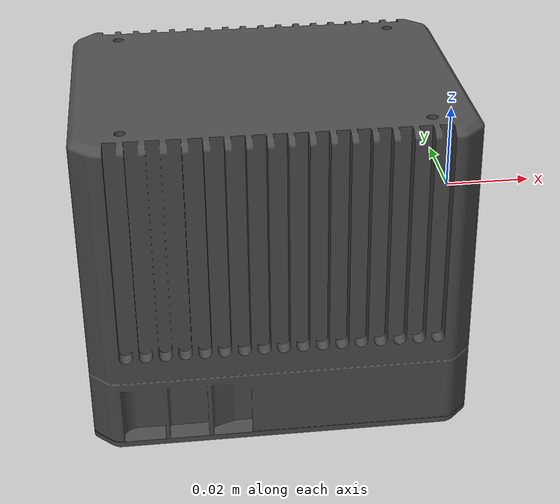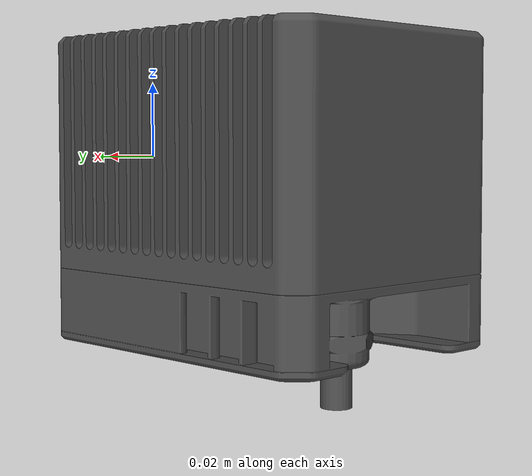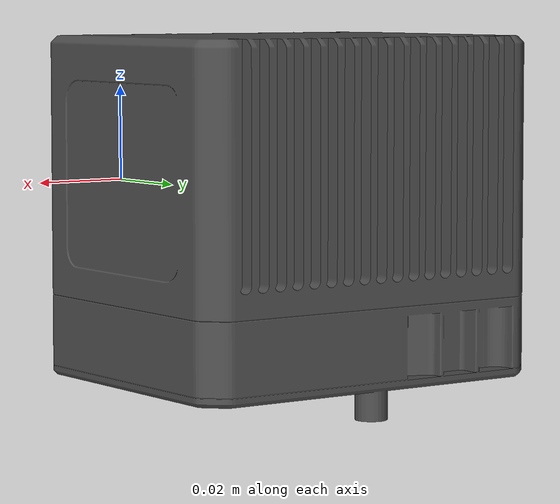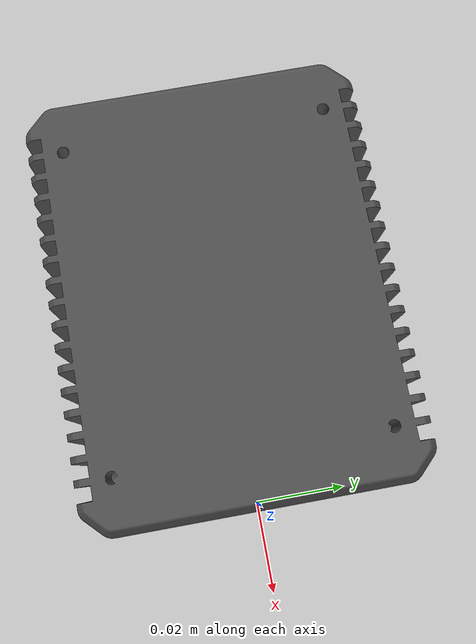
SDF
<sdf version='1.6'>
  <model name='livox_avia'>
    <link name='livox_base'>
      <pose frame=''>0 0 0 0 -0 0</pose>
      <inertial>
        <pose frame=''>0 0 0 0 -0 0</pose>
        <mass>0.2</mass>
        <inertia>
          <ixx>0.02</ixx>
          <ixy>0</ixy>
          <ixz>0</ixz>
          <iyy>0.02</iyy>
          <iyz>0</iyz>
          <izz>0.02</izz>
        </inertia>
      </inertial>
      <collision name='livox_base_collision'>
        <pose frame=''>0 0 0 0 -0 0</pose>
        <geometry>
          <mesh>
            <scale>0.5 0.5 0.5</scale>
            <uri>model://livox_avia/meshes/livox_mid40.dae</uri>
          </mesh>
        </geometry>
      </collision>
      <visual name='livox_base_visual'>
        <pose frame=''>0 0 0 0 -0 0</pose>
        <geometry>
          <mesh>
            <scale>1 1 1</scale>
            <uri>model://livox_avia/meshes/livox_mid40.dae</uri>
          </mesh>
        </geometry>
        <material>
          <script>
            <name>Gazebo/DarkGrey</name>
            <uri>file://media/materials/scripts/gazebo.material</uri>
          </script>
        </material>
      </visual>
      <gravity>1</gravity>
      <velocity_decay/>
      <sensor name='laser_livox' type='ray'>
        <visualize>1</visualize>
        <update_rate>10</update_rate>
        <plugin name='gazebo_ros_laser_controller' filename='liblivox_laser_simulation.so'>
          <ray>
            <scan>
              <horizontal>
                <samples>100</samples>
                <resolution>1</resolution>
                <min_angle>-0.614355377778</min_angle>
                <max_angle>0.614355377778</max_angle>
              </horizontal>
              <vertical>
                <samples>50</samples>
                <resolution>1</resolution>
                <min_angle>-0.673696522222</min_angle>
                <max_angle>0.673696522222</max_angle>
              </vertical>
            </scan>
            <range>
              <min>0.1</min>
              <max>200.0</max>
              <resolution>0.002</resolution>
            </range>
            <noise>
              <type>gaussian</type>
              <mean>0.0</mean>
              <stddev>0.01</stddev>
            </noise>
          </ray>
          <visualize>1</visualize>
          <samples>3000</samples>
          <downsample>1</downsample>
          <csv_file_name>package://livox_avia/scan_mode/avia.csv</csv_file_name>
          <ros_topic>scan</ros_topic>
        </plugin>
        <pose frame=''>0 0 0 0 -0 0</pose>
      </sensor>
    </link>
  </model>
</sdf>
